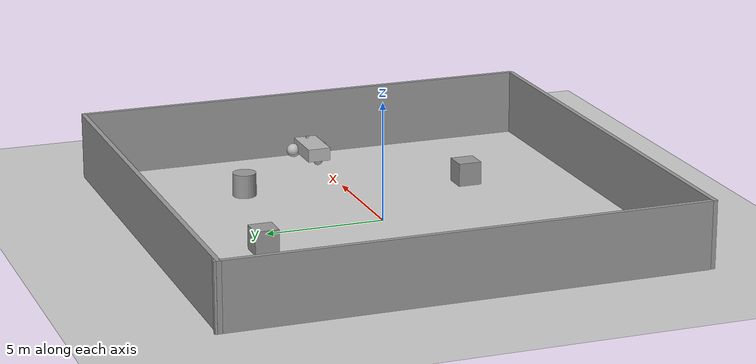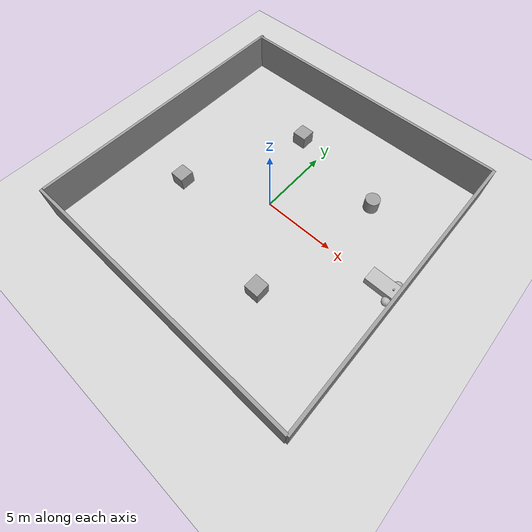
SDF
<sdf version="1.7">
 <world name="default">
  <model name="ground_plane">
   <static>1</static>
   <link name="link">
    <collision name="collision">
     <geometry><plane><normal>0 0 1</normal><size>100 100</size></plane></geometry>
     <surface><friction><ode><mu>100</mu><mu2>50</mu2></ode></friction></surface>
    </collision>
    <visual name="visual">
     <cast_shadows>0</cast_shadows>
     <geometry><plane><normal>0 0 1</normal><size>100 100</size></plane></geometry>
     <material>
      <script><uri>file://media/materials/scripts/gazebo.material</uri><name>Gazebo/Grey</name></script>
     </material>
    </visual>
   </link>
  </model>
  <light name="sun" type="directional">
   <pose>0 0 10 0 -0 0</pose>
   <diffuse>0.8 0.8 0.8 1</diffuse>
   <specular>0.2 0.2 0.2 1</specular>
   <attenuation>
    <range>1000</range>
    <constant>0.9</constant>
    <linear>0.01</linear>
    <quadratic>0.001</quadratic>
   </attenuation>
   <direction>-0.5 0.1 -0.9</direction>
   <spot><inner_angle>0</inner_angle><outer_angle>0</outer_angle><falloff>0</falloff></spot>
  </light>
  <gravity>0 0 -9.8</gravity>
  <magnetic_field>6e-06 2.3e-05 -4.2e-05</magnetic_field>
  <atmosphere type="adiabatic"/>
  <physics type="ode">
   <max_step_size>0.001</max_step_size>
   <real_time_factor>1</real_time_factor>
   <real_time_update_rate>1000</real_time_update_rate>
  </physics>
  <scene><ambient>0.4 0.4 0.4 1</ambient><background>0.7 0.7 0.7 1</background><shadows>1</shadows></scene>
  <spherical_coordinates>
   <surface_model>EARTH_WGS84</surface_model>
   <latitude_deg>0</latitude_deg>
   <longitude_deg>0</longitude_deg>
   <elevation>0</elevation>
   <heading_deg>0</heading_deg>
  </spherical_coordinates>
  <model name="chitti">
   <link name="chassis">
    <pose>-0.151427 -0 0.175 0 -0 0</pose>
    <inertial>
     <mass>1.14395</mass>
     <inertia>
      <ixx>0.126164</ixx>
      <ixy>0</ixy>
      <ixz>0</ixz>
      <iyy>0.416519</iyy>
      <iyz>0</iyz>
      <izz>0.481014</izz>
     </inertia>
    </inertial>
    <visual name="visual">
     <geometry><box><size>2.01142 1 0.568726</size></box></geometry>
     <material><shader type="pixel"/><emissive>0 0 0 1</emissive></material>
    </visual>
    <collision name="collision">
     <geometry><box><size>2.01142 1 0.568726</size></box></geometry>
     <surface>
      <friction>
       <ode><mu>1</mu><mu2>1</mu2><fdir1>0 0 0</fdir1><slip1>0</slip1><slip2>0</slip2></ode>
       <torsional>
        <coefficient>1</coefficient>
        <patch_radius>0</patch_radius>
        <surface_radius>0</surface_radius>
        <use_patch_radius>1</use_patch_radius>
        <ode><slip>0</slip></ode>
       </torsional>
      </friction>
      <bounce><restitution_coefficient>0</restitution_coefficient><threshold>1e+06</threshold></bounce>
      <contact>
       <collide_without_contact>0</collide_without_contact>
       <collide_without_contact_bitmask>1</collide_without_contact_bitmask>
       <collide_bitmask>1</collide_bitmask>
       <ode>
        <soft_cfm>0</soft_cfm>
        <soft_erp>0.2</soft_erp>
        <kp>1e+13</kp>
        <kd>1</kd>
        <max_vel>0.01</max_vel>
        <min_depth>0</min_depth>
       </ode>
       <bullet>
        <split_impulse>1</split_impulse>
        <split_impulse_penetration_threshold>-0.01</split_impulse_penetration_threshold>
        <soft_cfm>0</soft_cfm>
        <soft_erp>0.2</soft_erp>
        <kp>1e+13</kp>
        <kd>1</kd>
       </bullet>
      </contact>
     </surface>
    </collision>
   </link>
   <link name="caster">
    <pose>-0.957138 0 -0.125 0 -0 0</pose>
    <inertial>
     <mass>1</mass>
     <inertia><ixx>0.1</ixx><ixy>0</ixy><ixz>0</ixz><iyy>0.1</iyy><iyz>0</iyz><izz>0.1</izz></inertia>
    </inertial>
    <visual name="visual">
     <geometry><sphere><radius>0.2</radius></sphere></geometry>
     <material><shader type="pixel"/></material>
    </visual>
    <collision name="collision">
     <geometry><sphere><radius>0.2</radius></sphere></geometry>
     <surface>
      <friction>
       <ode><mu>1</mu><mu2>1</mu2><fdir1>0 0 0</fdir1><slip1>0</slip1><slip2>0</slip2></ode>
       <torsional>
        <coefficient>1</coefficient>
        <patch_radius>0</patch_radius>
        <surface_radius>0</surface_radius>
        <use_patch_radius>1</use_patch_radius>
        <ode><slip>0</slip></ode>
       </torsional>
      </friction>
      <bounce><restitution_coefficient>0</restitution_coefficient><threshold>1e+06</threshold></bounce>
      <contact>
       <collide_without_contact>0</collide_without_contact>
       <collide_without_contact_bitmask>1</collide_without_contact_bitmask>
       <collide_bitmask>1</collide_bitmask>
       <ode>
        <soft_cfm>0</soft_cfm>
        <soft_erp>0.2</soft_erp>
        <kp>1e+13</kp>
        <kd>1</kd>
        <max_vel>0.01</max_vel>
        <min_depth>0</min_depth>
       </ode>
       <bullet>
        <split_impulse>1</split_impulse>
        <split_impulse_penetration_threshold>-0.01</split_impulse_penetration_threshold>
        <soft_cfm>0</soft_cfm>
        <soft_erp>0.2</soft_erp>
        <kp>1e+13</kp>
        <kd>1</kd>
       </bullet>
      </contact>
     </surface>
    </collision>
   </link>
   <link name="left_wheel">
    <pose>0.554283 0.625029 -0.025 -1.5707 0 0</pose>
    <inertial>
     <mass>2</mass>
     <inertia><ixx>0.145833</ixx><ixy>0</ixy><ixz>0</ixz><iyy>0.145833</iyy><iyz>0</iyz><izz>0.125</izz></inertia>
    </inertial>
    <visual name="visual">
     <geometry><sphere><radius>0.3</radius></sphere></geometry>
     <material><shader type="pixel"/></material>
    </visual>
    <collision name="collision">
     <geometry><sphere><radius>0.3</radius></sphere></geometry>
     <surface>
      <friction>
       <ode><mu>1</mu><mu2>1</mu2><fdir1>0 0 0</fdir1><slip1>0</slip1><slip2>0</slip2></ode>
       <torsional>
        <coefficient>1</coefficient>
        <patch_radius>0</patch_radius>
        <surface_radius>0</surface_radius>
        <use_patch_radius>1</use_patch_radius>
        <ode><slip>0</slip></ode>
       </torsional>
      </friction>
      <bounce><restitution_coefficient>0</restitution_coefficient><threshold>1e+06</threshold></bounce>
      <contact>
       <collide_without_contact>0</collide_without_contact>
       <collide_without_contact_bitmask>1</collide_without_contact_bitmask>
       <collide_bitmask>1</collide_bitmask>
       <ode>
        <soft_cfm>0</soft_cfm>
        <soft_erp>0.2</soft_erp>
        <kp>1e+13</kp>
        <kd>1</kd>
        <max_vel>0.01</max_vel>
        <min_depth>0.01</min_depth>
       </ode>
       <bullet>
        <split_impulse>1</split_impulse>
        <split_impulse_penetration_threshold>-0.01</split_impulse_penetration_threshold>
        <soft_cfm>0</soft_cfm>
        <soft_erp>0.2</soft_erp>
        <kp>1e+13</kp>
        <kd>1</kd>
       </bullet>
      </contact>
     </surface>
    </collision>
   </link>
   <link name="right_wheel">
    <pose>0.554282 -0.625029 -0.025 -1.5707 0 0</pose>
    <inertial>
     <mass>2</mass>
     <inertia><ixx>0.145833</ixx><ixy>0</ixy><ixz>0</ixz><iyy>0.145833</iyy><iyz>0</iyz><izz>0.125</izz></inertia>
    </inertial>
    <visual name="visual">
     <geometry><sphere><radius>0.3</radius></sphere></geometry>
     <material><shader type="pixel"/></material>
    </visual>
    <collision name="collision">
     <geometry><sphere><radius>0.3</radius></sphere></geometry>
     <surface>
      <friction>
       <ode><mu>1</mu><mu2>1</mu2><fdir1>0 0 0</fdir1><slip1>0</slip1><slip2>0</slip2></ode>
       <torsional>
        <coefficient>1</coefficient>
        <patch_radius>0</patch_radius>
        <surface_radius>0</surface_radius>
        <use_patch_radius>1</use_patch_radius>
        <ode><slip>0</slip></ode>
       </torsional>
      </friction>
      <bounce><restitution_coefficient>0</restitution_coefficient><threshold>1e+06</threshold></bounce>
      <contact>
       <collide_without_contact>0</collide_without_contact>
       <collide_without_contact_bitmask>1</collide_without_contact_bitmask>
       <collide_bitmask>1</collide_bitmask>
       <ode>
        <soft_cfm>0</soft_cfm>
        <soft_erp>0.2</soft_erp>
        <kp>1e+13</kp>
        <kd>1</kd>
        <max_vel>0.01</max_vel>
        <min_depth>0.01</min_depth>
       </ode>
       <bullet>
        <split_impulse>1</split_impulse>
        <split_impulse_penetration_threshold>-0.01</split_impulse_penetration_threshold>
        <soft_cfm>0</soft_cfm>
        <soft_erp>0.2</soft_erp>
        <kp>1e+13</kp>
        <kd>1</kd>
       </bullet>
      </contact>
     </surface>
    </collision>
   </link>
   <model name="depth_camera">
    <link name="link">
     <pose>0 0 0.05 0 -0 0</pose>
     <inertial>
      <mass>0.1</mass>
      <inertia>
       <ixx>0.000166667</ixx>
       <iyy>0.000166667</iyy>
       <izz>0.000166667</izz>
       <ixy>0</ixy>
       <ixz>0</ixz>
       <iyz>0</iyz>
      </inertia>
     </inertial>
     <collision name="collision"><geometry><box><size>0.1 0.1 0.1</size></box></geometry></collision>
     <visual name="visual"><geometry><box><size>0.1 0.1 0.1</size></box></geometry></visual>
     <sensor name="camera" type="depth">
      <camera>
       <horizontal_fov>1.047</horizontal_fov>
       <image><width>320</width><height>240</height></image>
       <clip><near>0.1</near><far>100</far></clip>
      </camera>
      <always_on>1</always_on>
      <update_rate>30</update_rate>
      <visualize>1</visualize>
     </sensor>
    </link>
    <pose>0.514383 0.003429 0.490525 0 -0 0</pose>
   </model>
   <joint name="caster_wheel" type="ball">
    <parent>chassis</parent>
    <child>caster</child>
    <physics>
     <ode><limit><cfm>0</cfm><erp>0.2</erp></limit><suspension><cfm>0</cfm><erp>0.2</erp></suspension></ode>
    </physics>
   </joint>
   <joint name="chassis_camera" type="fixed">
    <parent>chassis</parent>
    <child>depth_camera::link</child>
    <physics>
     <ode><limit><cfm>0</cfm><erp>0.2</erp></limit><suspension><cfm>0</cfm><erp>0.2</erp></suspension></ode>
    </physics>
   </joint>
   <joint name="left_wheel_joint" type="revolute">
    <parent>chassis</parent>
    <child>left_wheel</child>
    <axis>
     <xyz>0 0 1</xyz>
     <limit>
      <lower>-1.79769e+308</lower>
      <upper>1.79769e+308</upper>
      <effort>-1</effort>
      <velocity>-1</velocity>
     </limit>
     <dynamics>
      <spring_reference>0</spring_reference>
      <spring_stiffness>0</spring_stiffness>
      <damping>0</damping>
      <friction>0</friction>
     </dynamics>
    </axis>
    <physics>
     <ode><limit><cfm>0</cfm><erp>0.2</erp></limit><suspension><cfm>0</cfm><erp>0.2</erp></suspension></ode>
    </physics>
   </joint>
   <joint name="right_wheel_joint" type="revolute">
    <parent>chassis</parent>
    <child>right_wheel</child>
    <axis>
     <xyz>0 0 1</xyz>
     <limit>
      <lower>-1.79769e+308</lower>
      <upper>1.79769e+308</upper>
      <effort>-1</effort>
      <velocity>-1</velocity>
     </limit>
     <dynamics>
      <spring_reference>0</spring_reference>
      <spring_stiffness>0</spring_stiffness>
      <damping>0</damping>
      <friction>0</friction>
     </dynamics>
    </axis>
    <physics>
     <ode><limit><cfm>0</cfm><erp>0.2</erp></limit><suspension><cfm>0</cfm><erp>0.2</erp></suspension></ode>
    </physics>
   </joint>
   <static>0</static>
   <plugin name="diff_drive" filename="libgazebo_ros_diff_drive.so">
    <ros>
     <namespace>/demo</namespace>
     <remapping>cmd_vel:=cmd_demo</remapping>
     <remapping>odom:=odom_demo</remapping>
    </ros>
    <left_joint>left_wheel_joint</left_joint>
    <right_joint>right_wheel_joint</right_joint>
    <wheel_separation>1.25</wheel_separation>
    <wheel_diameter>0.6</wheel_diameter>
    <max_wheel_torque>20</max_wheel_torque>
    <max_wheel_acceleration>1.0</max_wheel_acceleration>
    <publish_odom>1</publish_odom>
    <publish_odom_tf>1</publish_odom_tf>
    <publish_wheel_tf>1</publish_wheel_tf>
    <odometry_frame>odom_demo</odometry_frame>
    <robot_base_frame>chassis</robot_base_frame>
   </plugin>
   <pose>9.10559 0.003398 0.324995 -5e-06 5e-06 -9.6e-05</pose>
  </model>
  <model name="unit_box">
   <pose>-1.90965 5.72412 0.499995 0 1e-05 0</pose>
   <link name="link">
    <inertial>
     <mass>1</mass>
     <inertia>
      <ixx>0.166667</ixx>
      <ixy>0</ixy>
      <ixz>0</ixz>
      <iyy>0.166667</iyy>
      <iyz>0</iyz>
      <izz>0.166667</izz>
     </inertia>
    </inertial>
    <collision name="collision"><geometry><box><size>1 1 1</size></box></geometry></collision>
    <visual name="visual">
     <geometry><box><size>1 1 1</size></box></geometry>
     <material>
      <script><name>Gazebo/Grey</name><uri>file://media/materials/scripts/gazebo.material</uri></script>
     </material>
    </visual>
   </link>
  </model>
  <model name="unit_box_0">
   <pose>3.58942 -5.13326 0.499995 0 1e-05 0</pose>
   <link name="link">
    <inertial>
     <mass>1</mass>
     <inertia>
      <ixx>0.166667</ixx>
      <ixy>0</ixy>
      <ixz>0</ixz>
      <iyy>0.166667</iyy>
      <iyz>0</iyz>
      <izz>0.166667</izz>
     </inertia>
    </inertial>
    <collision name="collision"><geometry><box><size>1 1 1</size></box></geometry></collision>
    <visual name="visual">
     <geometry><box><size>1 1 1</size></box></geometry>
     <material>
      <script><name>Gazebo/Grey</name><uri>file://media/materials/scripts/gazebo.material</uri></script>
     </material>
    </visual>
   </link>
  </model>
  <model name="chitti_0">
   <link name="link">
    <pose>6.41007 0.083441 1.4 0 -0 0</pose>
    <inertial>
     <mass>1</mass>
     <inertia><ixx>1</ixx><ixy>0</ixy><ixz>0</ixz><iyy>1</iyy><iyz>0</iyz><izz>1</izz></inertia>
    </inertial>
    <visual name="visual">
     <cast_shadows>0</cast_shadows>
     <geometry><box><size>20 0.2 2.8</size></box></geometry>
     <material>
      <script>
       <uri>model://grey_wall/materials/scripts</uri>
       <uri>model://grey_wall/materials/textures</uri>
       <name>vrc/grey_wall</name>
      </script>
      <shader type="pixel"><normal_map>__default__</normal_map></shader>
      <ambient>1 1 1 1</ambient>
      <diffuse>1 1 1 1</diffuse>
      <specular>0 0 0 1</specular>
      <emissive>0 0 0 1</emissive>
     </material>
    </visual>
    <collision name="collision">
     <geometry><box><size>20 0.2 2.8</size></box></geometry>
     <surface>
      <friction>
       <ode><mu>1</mu><mu2>1</mu2><fdir1>0 0 0</fdir1><slip1>0</slip1><slip2>0</slip2></ode>
       <torsional>
        <coefficient>1</coefficient>
        <patch_radius>0</patch_radius>
        <surface_radius>0</surface_radius>
        <use_patch_radius>1</use_patch_radius>
        <ode><slip>0</slip></ode>
       </torsional>
      </friction>
      <bounce><restitution_coefficient>0</restitution_coefficient><threshold>1e+06</threshold></bounce>
      <contact>
       <collide_without_contact>0</collide_without_contact>
       <collide_without_contact_bitmask>1</collide_without_contact_bitmask>
       <collide_bitmask>1</collide_bitmask>
       <ode>
        <soft_cfm>0</soft_cfm>
        <soft_erp>0.2</soft_erp>
        <kp>1e+13</kp>
        <kd>1</kd>
        <max_vel>0.01</max_vel>
        <min_depth>0</min_depth>
       </ode>
       <bullet>
        <split_impulse>1</split_impulse>
        <split_impulse_penetration_threshold>-0.01</split_impulse_penetration_threshold>
        <soft_cfm>0</soft_cfm>
        <soft_erp>0.2</soft_erp>
        <kp>1e+13</kp>
        <kd>1</kd>
       </bullet>
      </contact>
     </surface>
    </collision>
   </link>
   <link name="link_clone">
    <pose>6.43808 -19.825 1.4 0 -0 0</pose>
    <inertial>
     <mass>1</mass>
     <inertia><ixx>1</ixx><ixy>0</ixy><ixz>0</ixz><iyy>1</iyy><iyz>0</iyz><izz>1</izz></inertia>
    </inertial>
    <visual name="visual">
     <cast_shadows>0</cast_shadows>
     <geometry><box><size>20 0.2 2.8</size></box></geometry>
     <material>
      <script>
       <uri>model://grey_wall/materials/scripts</uri>
       <uri>model://grey_wall/materials/textures</uri>
       <name>vrc/grey_wall</name>
      </script>
      <shader type="pixel"><normal_map>__default__</normal_map></shader>
      <ambient>1 1 1 1</ambient>
      <diffuse>1 1 1 1</diffuse>
      <specular>0 0 0 1</specular>
      <emissive>0 0 0 1</emissive>
     </material>
    </visual>
    <collision name="collision">
     <geometry><box><size>20 0.2 2.8</size></box></geometry>
     <surface>
      <friction>
       <ode><mu>1</mu><mu2>1</mu2><fdir1>0 0 0</fdir1><slip1>0</slip1><slip2>0</slip2></ode>
       <torsional>
        <coefficient>1</coefficient>
        <patch_radius>0</patch_radius>
        <surface_radius>0</surface_radius>
        <use_patch_radius>1</use_patch_radius>
        <ode><slip>0</slip></ode>
       </torsional>
      </friction>
      <bounce><restitution_coefficient>0</restitution_coefficient><threshold>1e+06</threshold></bounce>
      <contact>
       <collide_without_contact>0</collide_without_contact>
       <collide_without_contact_bitmask>1</collide_without_contact_bitmask>
       <collide_bitmask>1</collide_bitmask>
       <ode>
        <soft_cfm>0</soft_cfm>
        <soft_erp>0.2</soft_erp>
        <kp>1e+13</kp>
        <kd>1</kd>
        <max_vel>0.01</max_vel>
        <min_depth>0</min_depth>
       </ode>
       <bullet>
        <split_impulse>1</split_impulse>
        <split_impulse_penetration_threshold>-0.01</split_impulse_penetration_threshold>
        <soft_cfm>0</soft_cfm>
        <soft_erp>0.2</soft_erp>
        <kp>1e+13</kp>
        <kd>1</kd>
       </bullet>
      </contact>
     </surface>
    </collision>
   </link>
   <link name="link_clone_0">
    <pose>-3.48825 -9.71942 1.4 0 -0 1.5707</pose>
    <inertial>
     <mass>1</mass>
     <inertia><ixx>1</ixx><ixy>0</ixy><ixz>0</ixz><iyy>1</iyy><iyz>0</iyz><izz>1</izz></inertia>
    </inertial>
    <visual name="visual">
     <cast_shadows>0</cast_shadows>
     <geometry><box><size>20 0.2 2.8</size></box></geometry>
     <material>
      <script>
       <uri>model://grey_wall/materials/scripts</uri>
       <uri>model://grey_wall/materials/textures</uri>
       <name>vrc/grey_wall</name>
      </script>
      <shader type="pixel"><normal_map>__default__</normal_map></shader>
      <ambient>1 1 1 1</ambient>
      <diffuse>1 1 1 1</diffuse>
      <specular>0 0 0 1</specular>
      <emissive>0 0 0 1</emissive>
     </material>
    </visual>
    <collision name="collision">
     <geometry><box><size>20 0.2 2.8</size></box></geometry>
     <surface>
      <friction>
       <ode><mu>1</mu><mu2>1</mu2><fdir1>0 0 0</fdir1><slip1>0</slip1><slip2>0</slip2></ode>
       <torsional>
        <coefficient>1</coefficient>
        <patch_radius>0</patch_radius>
        <surface_radius>0</surface_radius>
        <use_patch_radius>1</use_patch_radius>
        <ode><slip>0</slip></ode>
       </torsional>
      </friction>
      <bounce><restitution_coefficient>0</restitution_coefficient><threshold>1e+06</threshold></bounce>
      <contact>
       <collide_without_contact>0</collide_without_contact>
       <collide_without_contact_bitmask>1</collide_without_contact_bitmask>
       <collide_bitmask>1</collide_bitmask>
       <ode>
        <soft_cfm>0</soft_cfm>
        <soft_erp>0.2</soft_erp>
        <kp>1e+13</kp>
        <kd>1</kd>
        <max_vel>0.01</max_vel>
        <min_depth>0</min_depth>
       </ode>
       <bullet>
        <split_impulse>1</split_impulse>
        <split_impulse_penetration_threshold>-0.01</split_impulse_penetration_threshold>
        <soft_cfm>0</soft_cfm>
        <soft_erp>0.2</soft_erp>
        <kp>1e+13</kp>
        <kd>1</kd>
       </bullet>
      </contact>
     </surface>
    </collision>
   </link>
   <link name="link_clone_0_clone">
    <pose>16.4684 -9.85667 1.4 0 -0 1.5707</pose>
    <inertial>
     <mass>1</mass>
     <inertia><ixx>1</ixx><ixy>0</ixy><ixz>0</ixz><iyy>1</iyy><iyz>0</iyz><izz>1</izz></inertia>
    </inertial>
    <visual name="visual">
     <cast_shadows>0</cast_shadows>
     <geometry><box><size>20 0.2 2.8</size></box></geometry>
     <material>
      <script>
       <uri>model://grey_wall/materials/scripts</uri>
       <uri>model://grey_wall/materials/textures</uri>
       <name>vrc/grey_wall</name>
      </script>
      <shader type="pixel"><normal_map>__default__</normal_map></shader>
      <ambient>1 1 1 1</ambient>
      <diffuse>1 1 1 1</diffuse>
      <specular>0 0 0 1</specular>
      <emissive>0 0 0 1</emissive>
     </material>
    </visual>
    <collision name="collision">
     <geometry><box><size>20 0.2 2.8</size></box></geometry>
     <surface>
      <friction>
       <ode><mu>1</mu><mu2>1</mu2><fdir1>0 0 0</fdir1><slip1>0</slip1><slip2>0</slip2></ode>
       <torsional>
        <coefficient>1</coefficient>
        <patch_radius>0</patch_radius>
        <surface_radius>0</surface_radius>
        <use_patch_radius>1</use_patch_radius>
        <ode><slip>0</slip></ode>
       </torsional>
      </friction>
      <bounce><restitution_coefficient>0</restitution_coefficient><threshold>1e+06</threshold></bounce>
      <contact>
       <collide_without_contact>0</collide_without_contact>
       <collide_without_contact_bitmask>1</collide_without_contact_bitmask>
       <collide_bitmask>1</collide_bitmask>
       <ode>
        <soft_cfm>0</soft_cfm>
        <soft_erp>0.2</soft_erp>
        <kp>1e+13</kp>
        <kd>1</kd>
        <max_vel>0.01</max_vel>
        <min_depth>0</min_depth>
       </ode>
       <bullet>
        <split_impulse>1</split_impulse>
        <split_impulse_penetration_threshold>-0.01</split_impulse_penetration_threshold>
        <soft_cfm>0</soft_cfm>
        <soft_erp>0.2</soft_erp>
        <kp>1e+13</kp>
        <kd>1</kd>
       </bullet>
      </contact>
     </surface>
    </collision>
   </link>
   <static>1</static>
   <pose>-6.40852 9.8791 0 0 -0 0</pose>
  </model>
  <model name="unit_box_1">
   <pose>-5.70286 -2.57038 0.499995 -1e-05 -0 0</pose>
   <link name="link">
    <inertial>
     <mass>1</mass>
     <inertia>
      <ixx>0.166667</ixx>
      <ixy>0</ixy>
      <ixz>0</ixz>
      <iyy>0.166667</iyy>
      <iyz>0</iyz>
      <izz>0.166667</izz>
     </inertia>
    </inertial>
    <collision name="collision"><geometry><box><size>1 1 1</size></box></geometry></collision>
    <visual name="visual">
     <geometry><box><size>1 1 1</size></box></geometry>
     <material>
      <script><name>Gazebo/Grey</name><uri>file://media/materials/scripts/gazebo.material</uri></script>
     </material>
    </visual>
   </link>
  </model>
  <model name="unit_cylinder">
   <pose>5.16098 4.30465 0.499997 3e-06 4e-06 -0</pose>
   <link name="link">
    <inertial>
     <mass>1</mass>
     <inertia><ixx>0.145833</ixx><ixy>0</ixy><ixz>0</ixz><iyy>0.145833</iyy><iyz>0</iyz><izz>0.125</izz></inertia>
    </inertial>
    <collision name="collision">
     <geometry><cylinder><radius>0.5</radius><length>1</length></cylinder></geometry>
    </collision>
    <visual name="visual">
     <geometry><cylinder><radius>0.5</radius><length>1</length></cylinder></geometry>
     <material>
      <script><name>Gazebo/Grey</name><uri>file://media/materials/scripts/gazebo.material</uri></script>
     </material>
    </visual>
   </link>
  </model>
 </world>
</sdf>
